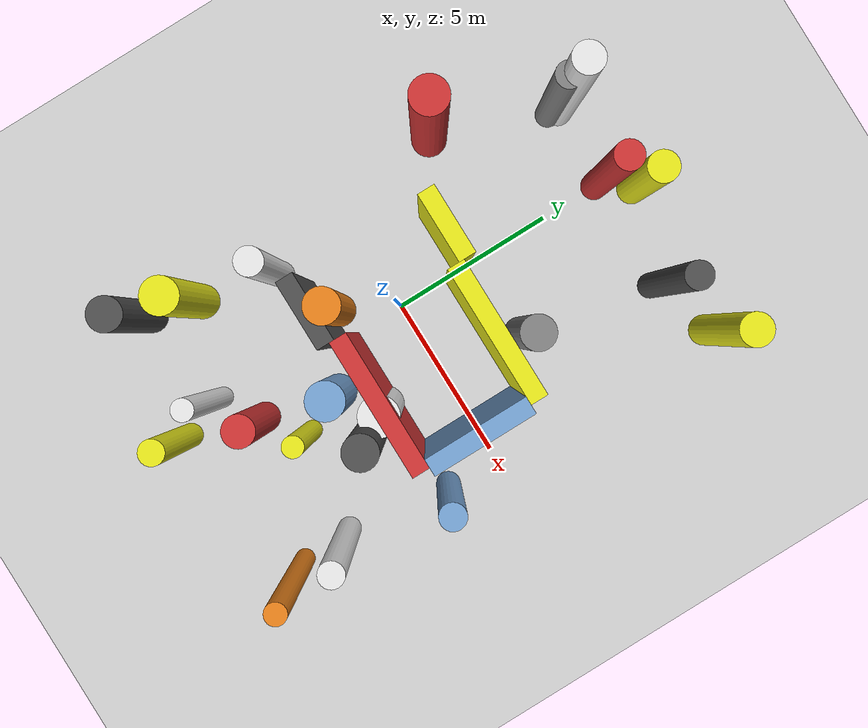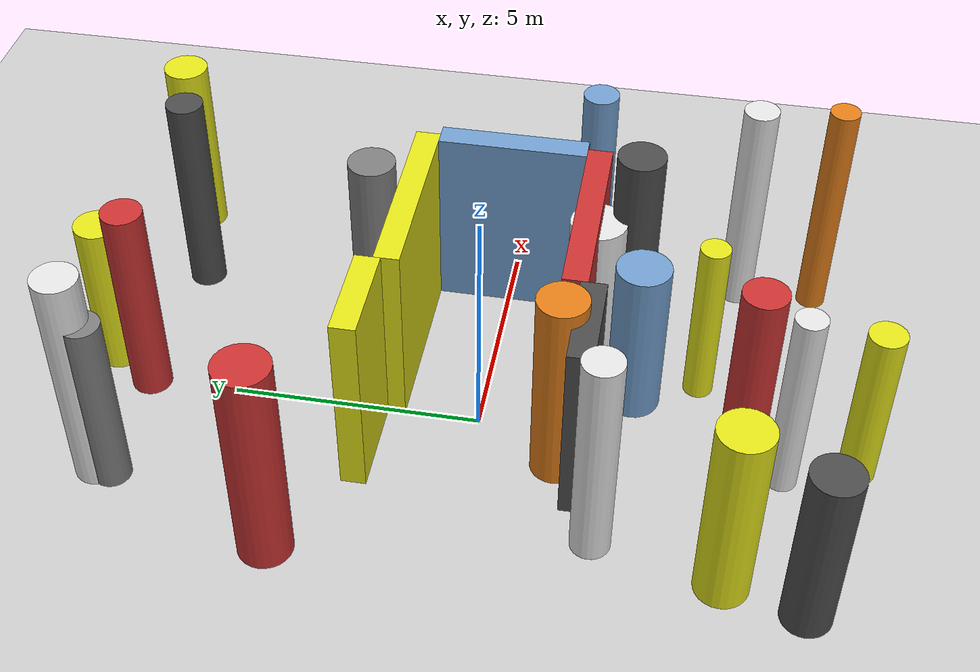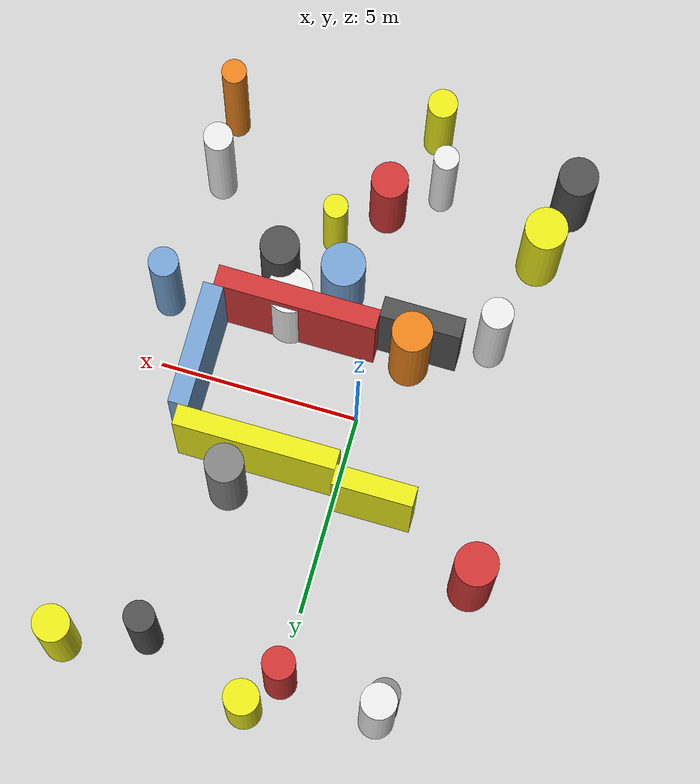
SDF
<?xml version='1.0'?>
<sdf version='1.6'>
  <world name='routeA_rl_v1__dense_recovery__rl_val__cul_de_sac_trap__000037'>
    <!-- Sun light -->
    <light name='sun' type='directional'>
      <cast_shadows>1</cast_shadows>
      <pose>0 0 10 0 0 0</pose>
      <diffuse>0.8 0.8 0.8 1</diffuse>
      <specular>0.2 0.2 0.2 1</specular>
      <attenuation>
        <range>1000</range>
        <constant>0.9</constant>
        <linear>0.01</linear>
        <quadratic>0.001</quadratic>
      </attenuation>
      <direction>-0.5 0.1 -0.9</direction>
    </light>

    <!-- Ground plane -->
    <model name='ground_plane'>
      <static>1</static>
      <link name='link'>
        <collision name='collision'>
          <geometry>
            <plane>
              <normal>0 0 1</normal>
              <size>100 100</size>
            </plane>
          </geometry>
          <surface>
            <contact>
              <collide_bitmask>65535</collide_bitmask>
              <ode/>
            </contact>
            <friction>
              <ode>
                <mu>100</mu>
                <mu2>50</mu2>
              </ode>
              <torsional><ode/></torsional>
            </friction>
            <bounce/>
          </surface>
          <max_contacts>10</max_contacts>
        </collision>
        <visual name='visual'>
          <cast_shadows>0</cast_shadows>
          <geometry>
            <plane>
              <normal>0 0 1</normal>
              <size>100 100</size>
            </plane>
          </geometry>
          <material>
            <script>
              <uri>file://media/materials/scripts/gazebo.material</uri>
              <n>Gazebo/Grey</n>
            </script>
          </material>
        </visual>
      </link>
    </model>

    <!-- Environment -->
    <magnetic_field>6e-06 2.3e-05 -4.2e-05</magnetic_field>
    <atmosphere type='adiabatic'/>
    <physics name='default_physics' default='0' type='ode'>
      <gravity>0 0 -9.8</gravity>
      <max_step_size>0.004</max_step_size>
      <real_time_factor>1</real_time_factor>
      <real_time_update_rate>250</real_time_update_rate>
    </physics>
    <scene>
      <ambient>0.4 0.4 0.4 1</ambient>
      <background>0.7 0.7 0.7 1</background>
      <shadows>1</shadows>
    </scene>
    <wind/>
    <spherical_coordinates>
      <surface_model>EARTH_WGS84</surface_model>
      <latitude_deg>0</latitude_deg>
      <longitude_deg>0</longitude_deg>
      <elevation>0</elevation>
      <heading_deg>0</heading_deg>
    </spherical_coordinates>

    <!-- ============ OBSTACLES (27) ============ -->
    <model name='trap_side_l'>
      <static>1</static>
      <link name='link'>
        <visual name='visual'>
          <geometry>
            <box>
              <size>4.0000 0.5000 4.0000</size>
            </box>
          </geometry>
          <material>
            <script>
              <n>Gazebo/Red</n>
              <uri>file://media/materials/scripts/gazebo.material</uri>
            </script>
            <ambient>0.8 0.2 0.2 1</ambient>
          </material>
        </visual>
        <collision name='collision'>
          <geometry>
            <box>
              <size>4.0000 0.5000 4.0000</size>
            </box>
          </geometry>
          <max_contacts>10</max_contacts>
          <surface>
            <contact><ode/></contact>
            <bounce/>
            <friction>
              <ode><mu>1</mu><mu2>1</mu2></ode>
              <torsional><ode/></torsional>
            </friction>
          </surface>
        </collision>
      </link>
      <pose>2.0000 -1.7500 2.0000 0 0 0.0000</pose>
    </model>

    <model name='trap_side_r'>
      <static>1</static>
      <link name='link'>
        <visual name='visual'>
          <geometry>
            <box>
              <size>4.0000 0.5000 4.0000</size>
            </box>
          </geometry>
          <material>
            <script>
              <n>Gazebo/Yellow</n>
              <uri>file://media/materials/scripts/gazebo.material</uri>
            </script>
            <ambient>0.9 0.9 0.1 1</ambient>
          </material>
        </visual>
        <collision name='collision'>
          <geometry>
            <box>
              <size>4.0000 0.5000 4.0000</size>
            </box>
          </geometry>
          <max_contacts>10</max_contacts>
          <surface>
            <contact><ode/></contact>
            <bounce/>
            <friction>
              <ode><mu>1</mu><mu2>1</mu2></ode>
              <torsional><ode/></torsional>
            </friction>
          </surface>
        </collision>
      </link>
      <pose>2.0000 1.7500 2.0000 0 0 0.0000</pose>
    </model>

    <model name='trap_back'>
      <static>1</static>
      <link name='link'>
        <visual name='visual'>
          <geometry>
            <box>
              <size>0.5000 3.0000 4.0000</size>
            </box>
          </geometry>
          <material>
            <script>
              <n>Gazebo/Blue</n>
              <uri>file://media/materials/scripts/gazebo.material</uri>
            </script>
            <ambient>0.447 0.624 0.812 1</ambient>
          </material>
        </visual>
        <collision name='collision'>
          <geometry>
            <box>
              <size>0.5000 3.0000 4.0000</size>
            </box>
          </geometry>
          <max_contacts>10</max_contacts>
          <surface>
            <contact><ode/></contact>
            <bounce/>
            <friction>
              <ode><mu>1</mu><mu2>1</mu2></ode>
              <torsional><ode/></torsional>
            </friction>
          </surface>
        </collision>
      </link>
      <pose>4.0000 0.0000 2.0000 0 0 0.0000</pose>
    </model>

    <model name='trap_funnel_l'>
      <static>1</static>
      <link name='link'>
        <visual name='visual'>
          <geometry>
            <box>
              <size>2.0000 0.5000 4.0000</size>
            </box>
          </geometry>
          <material>
            <script>
              <n>Gazebo/DarkGrey</n>
              <uri>file://media/materials/scripts/gazebo.material</uri>
            </script>
            <ambient>0.3 0.3 0.3 1</ambient>
          </material>
        </visual>
        <collision name='collision'>
          <geometry>
            <box>
              <size>2.0000 0.5000 4.0000</size>
            </box>
          </geometry>
          <max_contacts>10</max_contacts>
          <surface>
            <contact><ode/></contact>
            <bounce/>
            <friction>
              <ode><mu>1</mu><mu2>1</mu2></ode>
              <torsional><ode/></torsional>
            </friction>
          </surface>
        </collision>
      </link>
      <pose>-1.0000 -2.1000 2.0000 0 0 0.0000</pose>
    </model>

    <model name='trap_funnel_r'>
      <static>1</static>
      <link name='link'>
        <visual name='visual'>
          <geometry>
            <box>
              <size>2.0000 0.5000 4.0000</size>
            </box>
          </geometry>
          <material>
            <script>
              <n>Gazebo/Yellow</n>
              <uri>file://media/materials/scripts/gazebo.material</uri>
            </script>
            <ambient>0.9 0.9 0.1 1</ambient>
          </material>
        </visual>
        <collision name='collision'>
          <geometry>
            <box>
              <size>2.0000 0.5000 4.0000</size>
            </box>
          </geometry>
          <max_contacts>10</max_contacts>
          <surface>
            <contact><ode/></contact>
            <bounce/>
            <friction>
              <ode><mu>1</mu><mu2>1</mu2></ode>
              <torsional><ode/></torsional>
            </friction>
          </surface>
        </collision>
      </link>
      <pose>-1.0000 2.1000 2.0000 0 0 0.0000</pose>
    </model>

    <model name='trap_scatter_0'>
      <static>1</static>
      <link name='link'>
        <visual name='visual'>
          <geometry>
            <cylinder>
              <radius>0.4585</radius>
              <length>4.0380</length>
            </cylinder>
          </geometry>
          <material>
            <script>
              <n>Gazebo/Yellow</n>
              <uri>file://media/materials/scripts/gazebo.material</uri>
            </script>
            <ambient>0.9 0.9 0.1 1</ambient>
          </material>
        </visual>
        <collision name='collision'>
          <geometry>
            <cylinder>
              <radius>0.4585</radius>
              <length>4.0380</length>
            </cylinder>
          </geometry>
          <max_contacts>10</max_contacts>
          <surface>
            <contact><ode/></contact>
            <bounce/>
            <friction>
              <ode><mu>1</mu><mu2>1</mu2></ode>
              <torsional><ode/></torsional>
            </friction>
          </surface>
        </collision>
      </link>
      <pose>5.3707 7.3102 2.0190 0 0 0.0000</pose>
    </model>

    <model name='trap_scatter_1'>
      <static>1</static>
      <link name='link'>
        <visual name='visual'>
          <geometry>
            <cylinder>
              <radius>0.4725</radius>
              <length>4.9355</length>
            </cylinder>
          </geometry>
          <material>
            <script>
              <n>Gazebo/DarkGrey</n>
              <uri>file://media/materials/scripts/gazebo.material</uri>
            </script>
            <ambient>0.3 0.3 0.3 1</ambient>
          </material>
        </visual>
        <collision name='collision'>
          <geometry>
            <cylinder>
              <radius>0.4725</radius>
              <length>4.9355</length>
            </cylinder>
          </geometry>
          <max_contacts>10</max_contacts>
          <surface>
            <contact><ode/></contact>
            <bounce/>
            <friction>
              <ode><mu>1</mu><mu2>1</mu2></ode>
              <torsional><ode/></torsional>
            </friction>
          </surface>
        </collision>
      </link>
      <pose>2.6810 -2.6432 2.4678 0 0 0.0000</pose>
    </model>

    <model name='trap_scatter_2'>
      <static>1</static>
      <link name='link'>
        <visual name='visual'>
          <geometry>
            <cylinder>
              <radius>0.5206</radius>
              <length>4.0466</length>
            </cylinder>
          </geometry>
          <material>
            <script>
              <n>Gazebo/Yellow</n>
              <uri>file://media/materials/scripts/gazebo.material</uri>
            </script>
            <ambient>0.9 0.9 0.1 1</ambient>
          </material>
        </visual>
        <collision name='collision'>
          <geometry>
            <cylinder>
              <radius>0.5206</radius>
              <length>4.0466</length>
            </cylinder>
          </geometry>
          <max_contacts>10</max_contacts>
          <surface>
            <contact><ode/></contact>
            <bounce/>
            <friction>
              <ode><mu>1</mu><mu2>1</mu2></ode>
              <torsional><ode/></torsional>
            </friction>
          </surface>
        </collision>
      </link>
      <pose>-3.2465 -4.9850 2.0233 0 0 0.0000</pose>
    </model>

    <model name='trap_scatter_4'>
      <static>1</static>
      <link name='link'>
        <visual name='visual'>
          <geometry>
            <cylinder>
              <radius>0.4942</radius>
              <length>4.2803</length>
            </cylinder>
          </geometry>
          <material>
            <script>
              <n>Gazebo/Orange</n>
              <uri>file://media/materials/scripts/gazebo.material</uri>
            </script>
            <ambient>0.9 0.5 0.1 1</ambient>
          </material>
        </visual>
        <collision name='collision'>
          <geometry>
            <cylinder>
              <radius>0.4942</radius>
              <length>4.2803</length>
            </cylinder>
          </geometry>
          <max_contacts>10</max_contacts>
          <surface>
            <contact><ode/></contact>
            <bounce/>
            <friction>
              <ode><mu>1</mu><mu2>1</mu2></ode>
              <torsional><ode/></torsional>
            </friction>
          </surface>
        </collision>
      </link>
      <pose>-0.8650 -1.6422 2.1402 0 0 0.0000</pose>
    </model>

    <model name='trap_scatter_5'>
      <static>1</static>
      <link name='link'>
        <visual name='visual'>
          <geometry>
            <cylinder>
              <radius>0.4431</radius>
              <length>3.4338</length>
            </cylinder>
          </geometry>
          <material>
            <script>
              <n>Gazebo/Yellow</n>
              <uri>file://media/materials/scripts/gazebo.material</uri>
            </script>
            <ambient>0.9 0.9 0.1 1</ambient>
          </material>
        </visual>
        <collision name='collision'>
          <geometry>
            <cylinder>
              <radius>0.4431</radius>
              <length>3.4338</length>
            </cylinder>
          </geometry>
          <max_contacts>10</max_contacts>
          <surface>
            <contact><ode/></contact>
            <bounce/>
            <friction>
              <ode><mu>1</mu><mu2>1</mu2></ode>
              <torsional><ode/></torsional>
            </friction>
          </surface>
        </collision>
      </link>
      <pose>0.6497 7.6892 1.7169 0 0 0.0000</pose>
    </model>

    <model name='trap_scatter_6'>
      <static>1</static>
      <link name='link'>
        <visual name='visual'>
          <geometry>
            <cylinder>
              <radius>0.3764</radius>
              <length>3.8775</length>
            </cylinder>
          </geometry>
          <material>
            <script>
              <n>Gazebo/Grey</n>
              <uri>file://media/materials/scripts/gazebo.material</uri>
            </script>
            <ambient>0.5 0.5 0.5 1</ambient>
          </material>
        </visual>
        <collision name='collision'>
          <geometry>
            <cylinder>
              <radius>0.3764</radius>
              <length>3.8775</length>
            </cylinder>
          </geometry>
          <max_contacts>10</max_contacts>
          <surface>
            <contact><ode/></contact>
            <bounce/>
            <friction>
              <ode><mu>1</mu><mu2>1</mu2></ode>
              <torsional><ode/></torsional>
            </friction>
          </surface>
        </collision>
      </link>
      <pose>-2.5665 6.7259 1.9387 0 0 0.0000</pose>
    </model>

    <model name='trap_scatter_7'>
      <static>1</static>
      <link name='link'>
        <visual name='visual'>
          <geometry>
            <cylinder>
              <radius>0.3535</radius>
              <length>4.7711</length>
            </cylinder>
          </geometry>
          <material>
            <script>
              <n>Gazebo/White</n>
              <uri>file://media/materials/scripts/gazebo.material</uri>
            </script>
            <ambient>0.9 0.9 0.9 1</ambient>
          </material>
        </visual>
        <collision name='collision'>
          <geometry>
            <cylinder>
              <radius>0.3535</radius>
              <length>4.7711</length>
            </cylinder>
          </geometry>
          <max_contacts>10</max_contacts>
          <surface>
            <contact><ode/></contact>
            <bounce/>
            <friction>
              <ode><mu>1</mu><mu2>1</mu2></ode>
              <torsional><ode/></torsional>
            </friction>
          </surface>
        </collision>
      </link>
      <pose>4.8338 -4.8203 2.3856 0 0 0.0000</pose>
    </model>

    <model name='trap_scatter_8'>
      <static>1</static>
      <link name='link'>
        <visual name='visual'>
          <geometry>
            <cylinder>
              <radius>0.3803</radius>
              <length>4.5296</length>
            </cylinder>
          </geometry>
          <material>
            <script>
              <n>Gazebo/DarkGrey</n>
              <uri>file://media/materials/scripts/gazebo.material</uri>
            </script>
            <ambient>0.3 0.3 0.3 1</ambient>
          </material>
        </visual>
        <collision name='collision'>
          <geometry>
            <cylinder>
              <radius>0.3803</radius>
              <length>4.5296</length>
            </cylinder>
          </geometry>
          <max_contacts>10</max_contacts>
          <surface>
            <contact><ode/></contact>
            <bounce/>
            <friction>
              <ode><mu>1</mu><mu2>1</mu2></ode>
              <torsional><ode/></torsional>
            </friction>
          </surface>
        </collision>
      </link>
      <pose>3.3956 6.6440 2.2648 0 0 0.0000</pose>
    </model>

    <model name='trap_scatter_9'>
      <static>1</static>
      <link name='link'>
        <visual name='visual'>
          <geometry>
            <cylinder>
              <radius>0.5410</radius>
              <length>3.4726</length>
            </cylinder>
          </geometry>
          <material>
            <script>
              <n>Gazebo/Blue</n>
              <uri>file://media/materials/scripts/gazebo.material</uri>
            </script>
            <ambient>0.447 0.624 0.812 1</ambient>
          </material>
        </visual>
        <collision name='collision'>
          <geometry>
            <cylinder>
              <radius>0.5410</radius>
              <length>3.4726</length>
            </cylinder>
          </geometry>
          <max_contacts>10</max_contacts>
          <surface>
            <contact><ode/></contact>
            <bounce/>
            <friction>
              <ode><mu>1</mu><mu2>1</mu2></ode>
              <torsional><ode/></torsional>
            </friction>
          </surface>
        </collision>
      </link>
      <pose>1.1940 -2.9354 1.7363 0 0 0.0000</pose>
    </model>

    <model name='trap_scatter_11'>
      <static>1</static>
      <link name='link'>
        <visual name='visual'>
          <geometry>
            <cylinder>
              <radius>0.4049</radius>
              <length>4.3949</length>
            </cylinder>
          </geometry>
          <material>
            <script>
              <n>Gazebo/Red</n>
              <uri>file://media/materials/scripts/gazebo.material</uri>
            </script>
            <ambient>0.8 0.2 0.2 1</ambient>
          </material>
        </visual>
        <collision name='collision'>
          <geometry>
            <cylinder>
              <radius>0.4049</radius>
              <length>4.3949</length>
            </cylinder>
          </geometry>
          <max_contacts>10</max_contacts>
          <surface>
            <contact><ode/></contact>
            <bounce/>
            <friction>
              <ode><mu>1</mu><mu2>1</mu2></ode>
              <torsional><ode/></torsional>
            </friction>
          </surface>
        </collision>
      </link>
      <pose>-0.0128 6.7829 2.1975 0 0 0.0000</pose>
    </model>

    <model name='trap_scatter_12'>
      <static>1</static>
      <link name='link'>
        <visual name='visual'>
          <geometry>
            <cylinder>
              <radius>0.5319</radius>
              <length>4.6376</length>
            </cylinder>
          </geometry>
          <material>
            <script>
              <n>Gazebo/Red</n>
              <uri>file://media/materials/scripts/gazebo.material</uri>
            </script>
            <ambient>0.8 0.2 0.2 1</ambient>
          </material>
        </visual>
        <collision name='collision'>
          <geometry>
            <cylinder>
              <radius>0.5319</radius>
              <length>4.6376</length>
            </cylinder>
          </geometry>
          <max_contacts>10</max_contacts>
          <surface>
            <contact><ode/></contact>
            <bounce/>
            <friction>
              <ode><mu>1</mu><mu2>1</mu2></ode>
              <torsional><ode/></torsional>
            </friction>
          </surface>
        </collision>
      </link>
      <pose>-3.8079 3.3245 2.3188 0 0 0.0000</pose>
    </model>

    <model name='trap_scatter_13'>
      <static>1</static>
      <link name='link'>
        <visual name='visual'>
          <geometry>
            <cylinder>
              <radius>0.3874</radius>
              <length>4.6585</length>
            </cylinder>
          </geometry>
          <material>
            <script>
              <n>Gazebo/White</n>
              <uri>file://media/materials/scripts/gazebo.material</uri>
            </script>
            <ambient>0.9 0.9 0.9 1</ambient>
          </material>
        </visual>
        <collision name='collision'>
          <geometry>
            <cylinder>
              <radius>0.3874</radius>
              <length>4.6585</length>
            </cylinder>
          </geometry>
          <max_contacts>10</max_contacts>
          <surface>
            <contact><ode/></contact>
            <bounce/>
            <friction>
              <ode><mu>1</mu><mu2>1</mu2></ode>
              <torsional><ode/></torsional>
            </friction>
          </surface>
        </collision>
      </link>
      <pose>-2.6874 -2.5445 2.3292 0 0 0.0000</pose>
    </model>

    <model name='trap_scatter_14'>
      <static>1</static>
      <link name='link'>
        <visual name='visual'>
          <geometry>
            <cylinder>
              <radius>0.3055</radius>
              <length>4.1854</length>
            </cylinder>
          </geometry>
          <material>
            <script>
              <n>Gazebo/White</n>
              <uri>file://media/materials/scripts/gazebo.material</uri>
            </script>
            <ambient>0.9 0.9 0.9 1</ambient>
          </material>
        </visual>
        <collision name='collision'>
          <geometry>
            <cylinder>
              <radius>0.3055</radius>
              <length>4.1854</length>
            </cylinder>
          </geometry>
          <max_contacts>10</max_contacts>
          <surface>
            <contact><ode/></contact>
            <bounce/>
            <friction>
              <ode><mu>1</mu><mu2>1</mu2></ode>
              <torsional><ode/></torsional>
            </friction>
          </surface>
        </collision>
      </link>
      <pose>-0.4952 -5.9643 2.0927 0 0 0.0000</pose>
    </model>

    <model name='trap_scatter_15'>
      <static>1</static>
      <link name='link'>
        <visual name='visual'>
          <geometry>
            <cylinder>
              <radius>0.4530</radius>
              <length>3.6355</length>
            </cylinder>
          </geometry>
          <material>
            <script>
              <n>Gazebo/Red</n>
              <uri>file://media/materials/scripts/gazebo.material</uri>
            </script>
            <ambient>0.8 0.2 0.2 1</ambient>
          </material>
        </visual>
        <collision name='collision'>
          <geometry>
            <cylinder>
              <radius>0.4530</radius>
              <length>3.6355</length>
            </cylinder>
          </geometry>
          <max_contacts>10</max_contacts>
          <surface>
            <contact><ode/></contact>
            <bounce/>
            <friction>
              <ode><mu>1</mu><mu2>1</mu2></ode>
              <torsional><ode/></torsional>
            </friction>
          </surface>
        </collision>
      </link>
      <pose>0.6798 -5.2015 1.8178 0 0 0.0000</pose>
    </model>

    <model name='trap_scatter_16'>
      <static>1</static>
      <link name='link'>
        <visual name='visual'>
          <geometry>
            <cylinder>
              <radius>0.3003</radius>
              <length>4.8894</length>
            </cylinder>
          </geometry>
          <material>
            <script>
              <n>Gazebo/Orange</n>
              <uri>file://media/materials/scripts/gazebo.material</uri>
            </script>
            <ambient>0.9 0.5 0.1 1</ambient>
          </material>
        </visual>
        <collision name='collision'>
          <geometry>
            <cylinder>
              <radius>0.3003</radius>
              <length>4.8894</length>
            </cylinder>
          </geometry>
          <max_contacts>10</max_contacts>
          <surface>
            <contact><ode/></contact>
            <bounce/>
            <friction>
              <ode><mu>1</mu><mu2>1</mu2></ode>
              <torsional><ode/></torsional>
            </friction>
          </surface>
        </collision>
      </link>
      <pose>4.9052 -6.4240 2.4447 0 0 0.0000</pose>
    </model>

    <model name='trap_scatter_17'>
      <static>1</static>
      <link name='link'>
        <visual name='visual'>
          <geometry>
            <cylinder>
              <radius>0.2991</radius>
              <length>3.6732</length>
            </cylinder>
          </geometry>
          <material>
            <script>
              <n>Gazebo/Yellow</n>
              <uri>file://media/materials/scripts/gazebo.material</uri>
            </script>
            <ambient>0.9 0.9 0.1 1</ambient>
          </material>
        </visual>
        <collision name='collision'>
          <geometry>
            <cylinder>
              <radius>0.2991</radius>
              <length>3.6732</length>
            </cylinder>
          </geometry>
          <max_contacts>10</max_contacts>
          <surface>
            <contact><ode/></contact>
            <bounce/>
            <friction>
              <ode><mu>1</mu><mu2>1</mu2></ode>
              <torsional><ode/></torsional>
            </friction>
          </surface>
        </collision>
      </link>
      <pose>1.7508 -4.2151 1.8366 0 0 0.0000</pose>
    </model>

    <model name='trap_scatter_19'>
      <static>1</static>
      <link name='link'>
        <visual name='visual'>
          <geometry>
            <cylinder>
              <radius>0.5638</radius>
              <length>3.6011</length>
            </cylinder>
          </geometry>
          <material>
            <script>
              <n>Gazebo/White</n>
              <uri>file://media/materials/scripts/gazebo.material</uri>
            </script>
            <ambient>0.9 0.9 0.9 1</ambient>
          </material>
        </visual>
        <collision name='collision'>
          <geometry>
            <cylinder>
              <radius>0.5638</radius>
              <length>3.6011</length>
            </cylinder>
          </geometry>
          <max_contacts>10</max_contacts>
          <surface>
            <contact><ode/></contact>
            <bounce/>
            <friction>
              <ode><mu>1</mu><mu2>1</mu2></ode>
              <torsional><ode/></torsional>
            </friction>
          </surface>
        </collision>
      </link>
      <pose>2.2502 -1.9489 1.8005 0 0 0.0000</pose>
    </model>

    <model name='trap_scatter_20'>
      <static>1</static>
      <link name='link'>
        <visual name='visual'>
          <geometry>
            <cylinder>
              <radius>0.3606</radius>
              <length>3.6147</length>
            </cylinder>
          </geometry>
          <material>
            <script>
              <n>Gazebo/Yellow</n>
              <uri>file://media/materials/scripts/gazebo.material</uri>
            </script>
            <ambient>0.9 0.9 0.1 1</ambient>
          </material>
        </visual>
        <collision name='collision'>
          <geometry>
            <cylinder>
              <radius>0.3606</radius>
              <length>3.6147</length>
            </cylinder>
          </geometry>
          <max_contacts>10</max_contacts>
          <surface>
            <contact><ode/></contact>
            <bounce/>
            <friction>
              <ode><mu>1</mu><mu2>1</mu2></ode>
              <torsional><ode/></torsional>
            </friction>
          </surface>
        </collision>
      </link>
      <pose>-0.0287 -7.3815 1.8073 0 0 0.0000</pose>
    </model>

    <model name='trap_scatter_21'>
      <static>1</static>
      <link name='link'>
        <visual name='visual'>
          <geometry>
            <cylinder>
              <radius>0.3645</radius>
              <length>4.4888</length>
            </cylinder>
          </geometry>
          <material>
            <script>
              <n>Gazebo/Blue</n>
              <uri>file://media/materials/scripts/gazebo.material</uri>
            </script>
            <ambient>0.447 0.624 0.812 1</ambient>
          </material>
        </visual>
        <collision name='collision'>
          <geometry>
            <cylinder>
              <radius>0.3645</radius>
              <length>4.4888</length>
            </cylinder>
          </geometry>
          <max_contacts>10</max_contacts>
          <surface>
            <contact><ode/></contact>
            <bounce/>
            <friction>
              <ode><mu>1</mu><mu2>1</mu2></ode>
              <torsional><ode/></torsional>
            </friction>
          </surface>
        </collision>
      </link>
      <pose>5.2509 -1.6001 2.2444 0 0 0.0000</pose>
    </model>

    <model name='trap_scatter_22'>
      <static>1</static>
      <link name='link'>
        <visual name='visual'>
          <geometry>
            <cylinder>
              <radius>0.4838</radius>
              <length>3.7171</length>
            </cylinder>
          </geometry>
          <material>
            <script>
              <n>Gazebo/DarkGrey</n>
              <uri>file://media/materials/scripts/gazebo.material</uri>
            </script>
            <ambient>0.3 0.3 0.3 1</ambient>
          </material>
        </visual>
        <collision name='collision'>
          <geometry>
            <cylinder>
              <radius>0.4838</radius>
              <length>3.7171</length>
            </cylinder>
          </geometry>
          <max_contacts>10</max_contacts>
          <surface>
            <contact><ode/></contact>
            <bounce/>
            <friction>
              <ode><mu>1</mu><mu2>1</mu2></ode>
              <torsional><ode/></torsional>
            </friction>
          </surface>
        </collision>
      </link>
      <pose>-3.6525 -6.5044 1.8586 0 0 0.0000</pose>
    </model>

    <model name='trap_scatter_23'>
      <static>1</static>
      <link name='link'>
        <visual name='visual'>
          <geometry>
            <cylinder>
              <radius>0.4380</radius>
              <length>4.8573</length>
            </cylinder>
          </geometry>
          <material>
            <script>
              <n>Gazebo/White</n>
              <uri>file://media/materials/scripts/gazebo.material</uri>
            </script>
            <ambient>0.9 0.9 0.9 1</ambient>
          </material>
        </visual>
        <collision name='collision'>
          <geometry>
            <cylinder>
              <radius>0.4380</radius>
              <length>4.8573</length>
            </cylinder>
          </geometry>
          <max_contacts>10</max_contacts>
          <surface>
            <contact><ode/></contact>
            <bounce/>
            <friction>
              <ode><mu>1</mu><mu2>1</mu2></ode>
              <torsional><ode/></torsional>
            </friction>
          </surface>
        </collision>
      </link>
      <pose>-2.4969 7.0387 2.4287 0 0 0.0000</pose>
    </model>

    <model name='trap_scatter_24'>
      <static>1</static>
      <link name='link'>
        <visual name='visual'>
          <geometry>
            <cylinder>
              <radius>0.4756</radius>
              <length>4.2304</length>
            </cylinder>
          </geometry>
          <material>
            <script>
              <n>Gazebo/Grey</n>
              <uri>file://media/materials/scripts/gazebo.material</uri>
            </script>
            <ambient>0.5 0.5 0.5 1</ambient>
          </material>
        </visual>
        <collision name='collision'>
          <geometry>
            <cylinder>
              <radius>0.4756</radius>
              <length>4.2304</length>
            </cylinder>
          </geometry>
          <max_contacts>10</max_contacts>
          <surface>
            <contact><ode/></contact>
            <bounce/>
            <friction>
              <ode><mu>1</mu><mu2>1</mu2></ode>
              <torsional><ode/></torsional>
            </friction>
          </surface>
        </collision>
      </link>
      <pose>2.5372 2.5921 2.1152 0 0 0.0000</pose>
    </model>

    <!-- GUI camera -->
    <gui fullscreen='0'>
      <camera name='user_camera'>
        <pose>-15 0 18 0 0.85 0.15</pose>
        <view_controller>orbit</view_controller>
        <projection_type>perspective</projection_type>
      </camera>
    </gui>
  </world>
</sdf>
